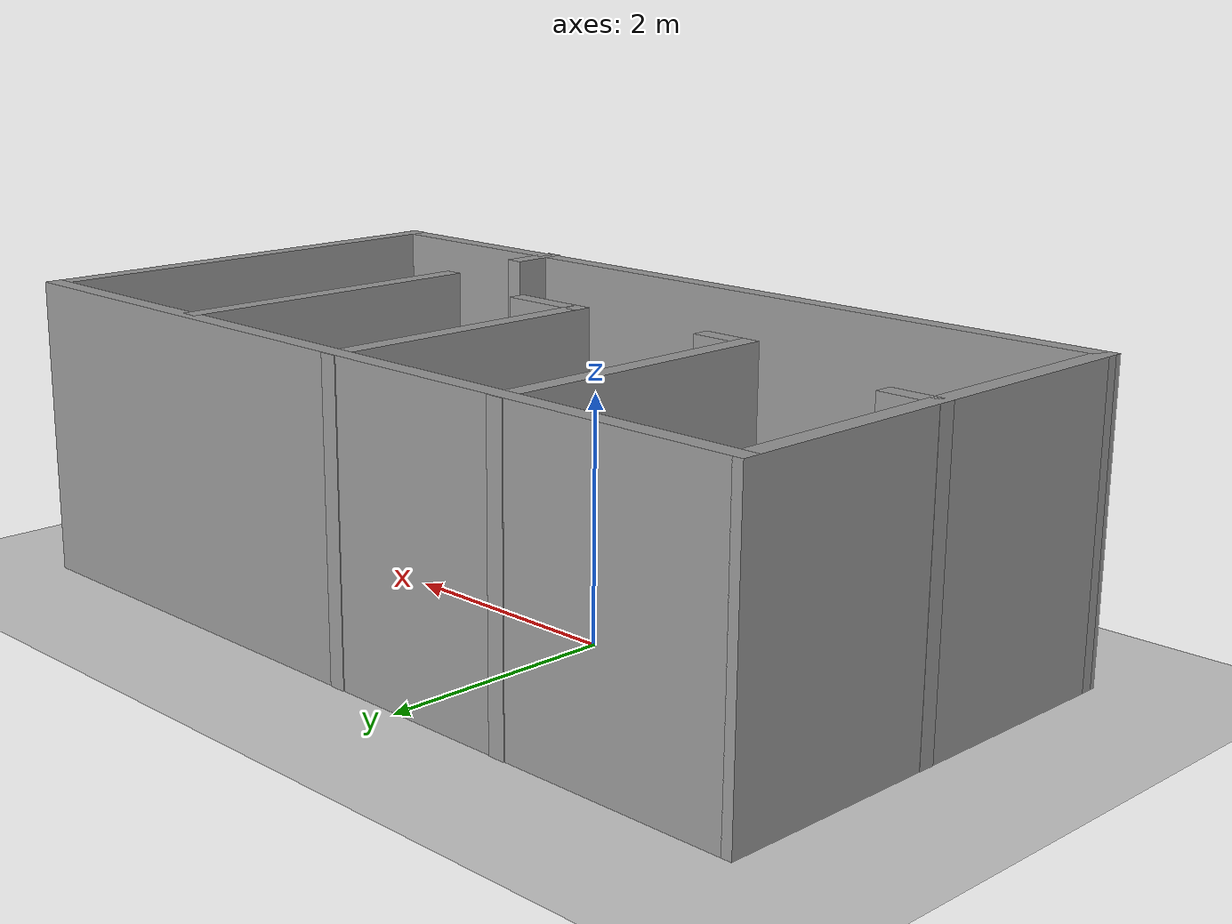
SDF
<sdf version="1.7">
 <world name="default">
  <model name="ground_plane">
   <static>1</static>
   <link name="link">
    <collision name="collision">
     <geometry><plane><normal>0 0 1</normal><size>100 100</size></plane></geometry>
     <surface><friction><ode><mu>100</mu><mu2>50</mu2></ode></friction></surface>
    </collision>
    <visual name="visual">
     <cast_shadows>0</cast_shadows>
     <geometry><plane><normal>0 0 1</normal><size>100 100</size></plane></geometry>
     <material>
      <script><uri>file://media/materials/scripts/gazebo.material</uri><name>Gazebo/Grey</name></script>
     </material>
    </visual>
   </link>
  </model>
  <light name="sun" type="directional">
   <pose>0 0 10 0 -0 0</pose>
   <diffuse>0.8 0.8 0.8 1</diffuse>
   <specular>0.2 0.2 0.2 1</specular>
   <attenuation>
    <range>1000</range>
    <constant>0.9</constant>
    <linear>0.01</linear>
    <quadratic>0.001</quadratic>
   </attenuation>
   <direction>-0.5 0.1 -0.9</direction>
   <spot><inner_angle>0</inner_angle><outer_angle>0</outer_angle><falloff>0</falloff></spot>
  </light>
  <scene><shadows>0</shadows><ambient>0.4 0.4 0.4 1</ambient><background>0.7 0.7 0.7 1</background></scene>
  <physics type="ode">
   <real_time_update_rate>1000</real_time_update_rate>
   <max_step_size>0.001</max_step_size>
   <real_time_factor>1</real_time_factor>
   <ode>
    <solver>
     <type>quick</type>
     <iters>150</iters>
     <precon_iters>0</precon_iters>
     <sor>1.4</sor>
     <use_dynamic_moi_rescaling>1</use_dynamic_moi_rescaling>
    </solver>
    <constraints>
     <cfm>1e-05</cfm>
     <erp>0.2</erp>
     <contact_max_correcting_vel>2000</contact_max_correcting_vel>
     <contact_surface_layer>0.01</contact_surface_layer>
    </constraints>
   </ode>
  </physics>
  <gravity>0 0 -9.8</gravity>
  <magnetic_field>6e-06 2.3e-05 -4.2e-05</magnetic_field>
  <atmosphere type="adiabatic"/>
  <audio><device>default</device></audio>
  <spherical_coordinates>
   <surface_model>EARTH_WGS84</surface_model>
   <latitude_deg>0</latitude_deg>
   <longitude_deg>0</longitude_deg>
   <elevation>0</elevation>
   <heading_deg>0</heading_deg>
  </spherical_coordinates>
  <model name="Untitled">
   <pose>0.674629 -0.033446 0 0 -0 0</pose>
   <link name="Wall_0">
    <collision name="Wall_0_Collision">
     <geometry><box><size>4 0.15 2.5</size></box></geometry>
     <pose>0 0 1.25 0 -0 0</pose>
    </collision>
    <visual name="Wall_0_Visual">
     <pose>0 0 1.25 0 -0 0</pose>
     <geometry><box><size>4 0.15 2.5</size></box></geometry>
     <material>
      <script><uri>file://media/materials/scripts/gazebo.material</uri><name>Gazebo/Grey</name></script>
      <ambient>1 1 1 1</ambient>
     </material>
     <meta><layer>0</layer></meta>
    </visual>
    <pose>-3.73068 0.010507 0 0 -0 1.5708</pose>
   </link>
   <link name="Wall_10">
    <collision name="Wall_10_Collision">
     <geometry><box><size>0.75 0.15 2.5</size></box></geometry>
     <pose>0 0 1.25 0 -0 0</pose>
    </collision>
    <visual name="Wall_10_Visual">
     <pose>0 0 1.25 0 -0 0</pose>
     <geometry><box><size>0.75 0.15 2.5</size></box></geometry>
     <material>
      <script><uri>file://media/materials/scripts/gazebo.material</uri><name>Gazebo/Grey</name></script>
      <ambient>1 1 1 1</ambient>
     </material>
     <meta><layer>0</layer></meta>
    </visual>
    <pose>0.287634 -0.406314 0 0 -0 0</pose>
   </link>
   <link name="Wall_14">
    <collision name="Wall_14_Collision">
     <geometry><box><size>0.5 0.15 2.5</size></box></geometry>
     <pose>0 0 1.25 0 -0 0</pose>
    </collision>
    <visual name="Wall_14_Visual">
     <pose>0 0 1.25 0 -0 0</pose>
     <geometry><box><size>0.5 0.15 2.5</size></box></geometry>
     <material>
      <script><uri>file://media/materials/scripts/gazebo.material</uri><name>Gazebo/Grey</name></script>
      <ambient>1 1 1 1</ambient>
     </material>
     <meta><layer>0</layer></meta>
    </visual>
    <pose>-3.55823 0.064098 0 0 -0 0</pose>
   </link>
   <link name="Wall_16">
    <collision name="Wall_16_Collision">
     <geometry><box><size>2.75 0.15 2.5</size></box></geometry>
     <pose>0 0 1.25 0 -0 0</pose>
    </collision>
    <visual name="Wall_16_Visual">
     <pose>0 0 1.25 0 -0 0</pose>
     <geometry><box><size>2.75 0.15 2.5</size></box></geometry>
     <material>
      <script><uri>file://media/materials/scripts/gazebo.material</uri><name>Gazebo/Grey</name></script>
      <ambient>1 1 1 1</ambient>
     </material>
     <meta><layer>0</layer></meta>
    </visual>
    <pose>1.82842 0.611988 0 0 -0 -1.5708</pose>
   </link>
   <link name="Wall_18">
    <collision name="Wall_18_Collision">
     <geometry><box><size>0.5 0.15 2.5</size></box></geometry>
     <pose>0 0 1.25 0 -0 0</pose>
    </collision>
    <visual name="Wall_18_Visual">
     <pose>0 0 1.25 0 -0 0</pose>
     <geometry><box><size>0.5 0.15 2.5</size></box></geometry>
     <material>
      <script><uri>file://media/materials/scripts/gazebo.material</uri><name>Gazebo/Grey</name></script>
      <ambient>1 1 1 1</ambient>
     </material>
     <meta><layer>0</layer></meta>
    </visual>
    <pose>1.89348 -1.76869 0 0 -0 1.5708</pose>
   </link>
   <link name="Wall_2">
    <collision name="Wall_2_Collision">
     <geometry><box><size>7.6139 0.15 2.5</size></box></geometry>
     <pose>0 0 1.25 0 -0 0</pose>
    </collision>
    <visual name="Wall_2_Visual">
     <pose>0 0 1.25 0 -0 0</pose>
     <geometry><box><size>7.6139 0.15 2.5</size></box></geometry>
     <material>
      <script><uri>file://media/materials/scripts/gazebo.material</uri><name>Gazebo/Grey</name></script>
      <ambient>1 1 1 1</ambient>
     </material>
     <meta><layer>0</layer></meta>
    </visual>
    <pose>0.001275 1.93582 0 0 -0 8.4e-05</pose>
   </link>
   <link name="Wall_3">
    <collision name="Wall_3_Collision">
     <geometry><box><size>4 0.15 2.5</size></box></geometry>
     <pose>0 0 1.25 0 -0 0</pose>
    </collision>
    <visual name="Wall_3_Visual">
     <pose>0 0 1.25 0 -0 0</pose>
     <geometry><box><size>4 0.15 2.5</size></box></geometry>
     <material>
      <script><uri>file://media/materials/scripts/gazebo.material</uri><name>Gazebo/Grey</name></script>
      <ambient>1 1 1 1</ambient>
     </material>
     <meta><layer>0</layer></meta>
    </visual>
    <pose>3.72665 0.004556 0 0 -0 -1.5708</pose>
   </link>
   <link name="Wall_4">
    <collision name="Wall_4_Collision">
     <geometry><box><size>7.6139 0.15 2.5</size></box></geometry>
     <pose>0 0 1.25 0 -0 0</pose>
    </collision>
    <visual name="Wall_4_Visual">
     <pose>0 0 1.25 0 -0 0</pose>
     <geometry><box><size>7.6139 0.15 2.5</size></box></geometry>
     <material>
      <script><uri>file://media/materials/scripts/gazebo.material</uri><name>Gazebo/Grey</name></script>
      <ambient>1 1 1 1</ambient>
     </material>
     <meta><layer>0</layer></meta>
    </visual>
    <pose>0.001275 -1.91418 0 0 -0 -3.14151</pose>
   </link>
   <link name="Wall_6">
    <collision name="Wall_6_Collision">
     <geometry><box><size>2.5 0.15 2.5</size></box></geometry>
     <pose>0 0 1.25 0 -0 0</pose>
    </collision>
    <visual name="Wall_6_Visual">
     <pose>0 0 1.25 0 -0 0</pose>
     <geometry><box><size>2.5 0.15 2.5</size></box></geometry>
     <material>
      <script><uri>file://media/materials/scripts/gazebo.material</uri><name>Gazebo/Grey</name></script>
      <ambient>1 1 1 1</ambient>
     </material>
     <meta><layer>0</layer></meta>
    </visual>
    <pose>-1.73096 0.768686 0 0 -0 -1.5708</pose>
   </link>
   <link name="Wall_7">
    <collision name="Wall_7_Collision">
     <geometry><box><size>0.5 0.15 2.5</size></box></geometry>
     <pose>0 0 1.25 0 -0 0</pose>
    </collision>
    <visual name="Wall_7_Visual">
     <pose>0 0 1.25 0 -0 0</pose>
     <geometry><box><size>0.5 0.15 2.5</size></box></geometry>
     <material>
      <script><uri>file://media/materials/scripts/gazebo.material</uri><name>Gazebo/Grey</name></script>
      <ambient>1 1 1 1</ambient>
     </material>
     <meta><layer>0</layer></meta>
    </visual>
    <pose>-1.55595 -0.406314 0 0 -0 0</pose>
   </link>
   <link name="Wall_9">
    <collision name="Wall_9_Collision">
     <geometry><box><size>2.5 0.15 2.5</size></box></geometry>
     <pose>0 0 1.25 0 -0 0</pose>
    </collision>
    <visual name="Wall_9_Visual">
     <pose>0 0 1.25 0 -0 0</pose>
     <geometry><box><size>2.5 0.15 2.5</size></box></geometry>
     <material>
      <script><uri>file://media/materials/scripts/gazebo.material</uri><name>Gazebo/Grey</name></script>
      <ambient>1 1 1 1</ambient>
     </material>
     <meta><layer>0</layer></meta>
    </visual>
    <pose>-0.012366 0.768686 0 0 -0 -1.5708</pose>
   </link>
   <static>1</static>
  </model>
 </world>
</sdf>
